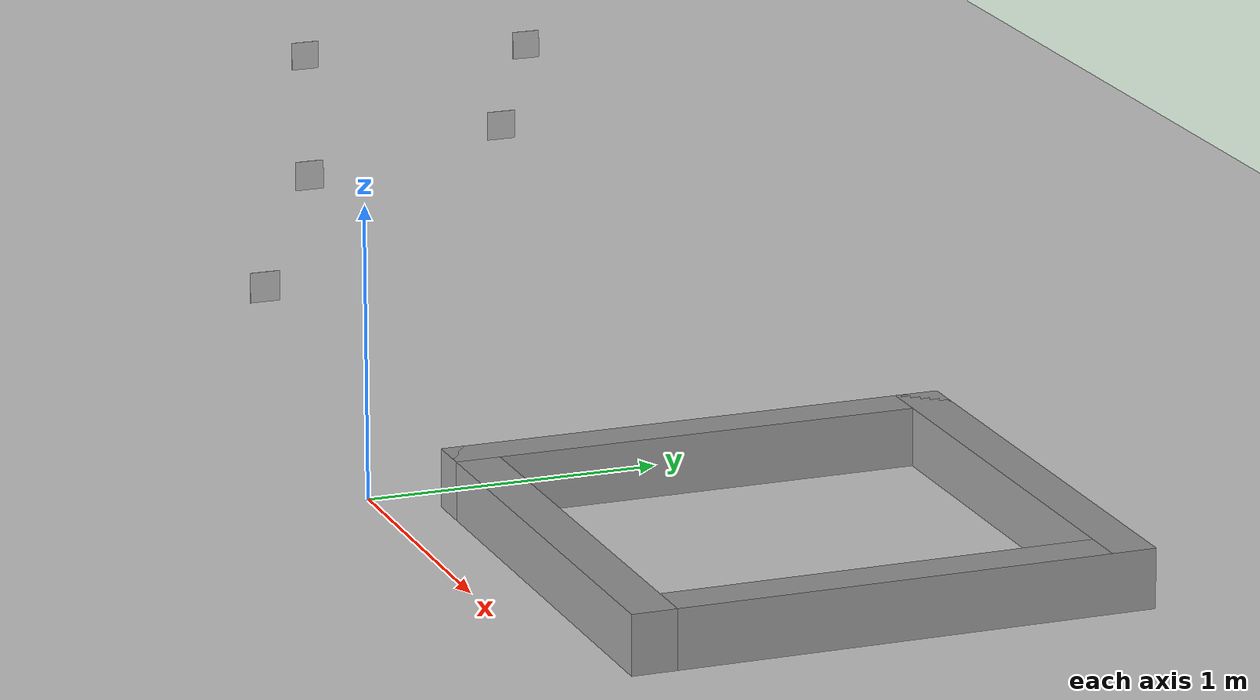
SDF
<sdf version="1.7">
 <world name="default">
  <light name="sun" type="directional">
   <pose>0 0 10 0 -0 0</pose>
   <diffuse>0.8 0.8 0.8 1</diffuse>
   <specular>0.2 0.2 0.2 1</specular>
   <attenuation>
    <range>1000</range>
    <constant>0.9</constant>
    <linear>0.01</linear>
    <quadratic>0.001</quadratic>
   </attenuation>
   <direction>-0.5 0.1 -0.9</direction>
   <spot><inner_angle>0</inner_angle><outer_angle>0</outer_angle><falloff>0</falloff></spot>
  </light>
  <model name="ground_plane">
   <static>1</static>
   <link name="link">
    <collision name="collision">
     <geometry><plane><normal>0 0 1</normal><size>100 100</size></plane></geometry>
     <surface>
      <contact><collide_bitmask>65535</collide_bitmask></contact>
      <friction><ode><mu>100</mu><mu2>50</mu2></ode></friction>
     </surface>
    </collision>
    <visual name="visual">
     <cast_shadows>0</cast_shadows>
     <geometry><plane><normal>0 0 1</normal><size>100 100</size></plane></geometry>
     <material>
      <script><uri>file://media/materials/scripts/gazebo.material</uri><name>Gazebo/Grey</name></script>
     </material>
    </visual>
   </link>
  </model>
  <gravity>0 0 -9.8</gravity>
  <magnetic_field>6e-06 2.3e-05 -4.2e-05</magnetic_field>
  <atmosphere type="adiabatic"/>
  <physics type="ode">
   <max_step_size>0.001</max_step_size>
   <real_time_factor>1</real_time_factor>
   <real_time_update_rate>1000</real_time_update_rate>
  </physics>
  <scene><ambient>0.4 0.4 0.4 1</ambient><background>0.7 0.7 0.7 1</background><shadows>1</shadows></scene>
  <audio><device>default</device></audio>
  <spherical_coordinates>
   <surface_model>EARTH_WGS84</surface_model>
   <latitude_deg>0</latitude_deg>
   <longitude_deg>0</longitude_deg>
   <elevation>0</elevation>
   <heading_deg>0</heading_deg>
  </spherical_coordinates>
  <model name="arena_ttb3">
   <pose>1.7 1.7 0 0 -0 0</pose>
   <link name="Wall_10">
    <collision name="Wall_10_Collision">
     <geometry><box><size>1.75 0.15 0.2</size></box></geometry>
     <pose>0 0 0.1 0 -0 0</pose>
    </collision>
    <visual name="Wall_10_Visual">
     <pose>0 0 0.1 0 -0 0</pose>
     <geometry><box><size>1.75 0.15 0.2</size></box></geometry>
     <material>
      <script><uri>file://media/materials/scripts/gazebo.material</uri><name>Gazebo/Grey</name></script>
      <ambient>1 1 1 1</ambient>
     </material>
     <meta><layer>0</layer></meta>
    </visual>
    <pose>-0.6675 -1.4275 0 0 -0 3.14159</pose>
   </link>
   <link name="Wall_11">
    <collision name="Wall_11_Collision">
     <geometry><box><size>1.75 0.15 0.2</size></box></geometry>
     <pose>0 0 0.1 0 -0 0</pose>
    </collision>
    <visual name="Wall_11_Visual">
     <pose>0 0 0.1 0 -0 0</pose>
     <geometry><box><size>1.75 0.15 0.2</size></box></geometry>
     <material>
      <script><uri>file://media/materials/scripts/gazebo.material</uri><name>Gazebo/Grey</name></script>
      <ambient>1 1 1 1</ambient>
     </material>
     <meta><layer>0</layer></meta>
    </visual>
    <pose>-1.4675 -0.6275 0 0 -0 1.5708</pose>
   </link>
   <link name="Wall_8">
    <collision name="Wall_8_Collision">
     <geometry><box><size>1.75 0.15 0.2</size></box></geometry>
     <pose>0 0 0.1 0 -0 0</pose>
    </collision>
    <visual name="Wall_8_Visual">
     <pose>0 0 0.1 0 -0 0</pose>
     <geometry><box><size>1.75 0.15 0.2</size></box></geometry>
     <material>
      <script><uri>file://media/materials/scripts/gazebo.material</uri><name>Gazebo/Grey</name></script>
      <ambient>1 1 1 1</ambient>
     </material>
     <meta><layer>0</layer></meta>
    </visual>
    <pose>-0.6675 0.1725 0 0 -0 0</pose>
   </link>
   <link name="Wall_9">
    <collision name="Wall_9_Collision">
     <geometry><box><size>1.75 0.15 0.2</size></box></geometry>
     <pose>0 0 0.1 0 -0 0</pose>
    </collision>
    <visual name="Wall_9_Visual">
     <pose>0 0 0.1 0 -0 0</pose>
     <geometry><box><size>1.75 0.15 0.2</size></box></geometry>
     <material>
      <script><uri>file://media/materials/scripts/gazebo.material</uri><name>Gazebo/Grey</name></script>
      <ambient>1 1 1 1</ambient>
     </material>
     <meta><layer>0</layer></meta>
    </visual>
    <pose>0.1325 -0.6275 0 0 -0 -1.5708</pose>
   </link>
   <static>1</static>
  </model>
  <model name="aruco_marker_1">
   <static>1</static>
   <link name="link">
    <visual name="visual">
     <geometry>
      <mesh><uri>model://aruco_marker_1/meshes/aruco_marker_1.dae</uri><scale>0.22 0.22 0.22</scale></mesh>
     </geometry>
    </visual>
   </link>
   <pose>-5.25574 1.51877 0 0 -0 0</pose>
  </model>
  <model name="aruco_marker_2">
   <static>1</static>
   <link name="link">
    <visual name="visual">
     <geometry>
      <mesh><uri>model://aruco_marker_2/meshes/aruco_marker_2.dae</uri><scale>0.22 0.22 0.22</scale></mesh>
     </geometry>
    </visual>
   </link>
   <pose>-3.58586 0.984499 0 0 -0 0</pose>
  </model>
  <model name="aruco_marker_3">
   <static>1</static>
   <link name="link">
    <visual name="visual">
     <geometry>
      <mesh><uri>model://aruco_marker_3/meshes/aruco_marker_3.dae</uri><scale>0.22 0.22 0.22</scale></mesh>
     </geometry>
    </visual>
   </link>
   <pose>-3.99547 1.89465 0 0 -0 0</pose>
  </model>
  <model name="aruco_marker_4">
   <static>1</static>
   <link name="link">
    <visual name="visual">
     <geometry>
      <mesh><uri>model://aruco_marker_4/meshes/aruco_marker_4.dae</uri><scale>0.22 0.22 0.22</scale></mesh>
     </geometry>
    </visual>
   </link>
   <pose>-5.10058 2.3967 0 0 -0 0</pose>
  </model>
  <model name="aruco_marker_5">
   <static>1</static>
   <link name="link">
    <visual name="visual">
     <geometry>
      <mesh><uri>model://aruco_marker_5/meshes/aruco_marker_5.dae</uri><scale>0.22 0.22 0.22</scale></mesh>
     </geometry>
    </visual>
   </link>
   <pose>-2.25811 0.379015 0 0 -0 0</pose>
  </model>
  <plugin name="gazebo_ros_init" filename="libgazebo_ros_init.so">
   <ros><namespace>/</namespace><argument>--ros-args</argument></ros>
  </plugin>
  <plugin name="gazebo_ros_factory" filename="libgazebo_ros_factory.so"/>
  <plugin name="gazebo_ros_api_plugin" filename="libgazebo_ros_api_plugin.so"/>
  <plugin name="gazebo_ros_state" filename="libgazebo_ros_state.so"/>
 </world>
</sdf>
